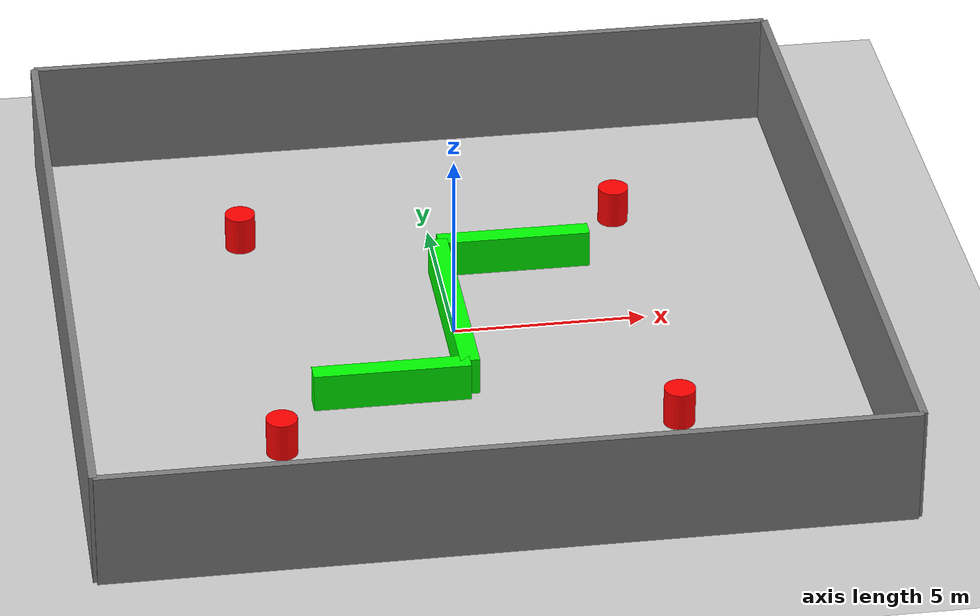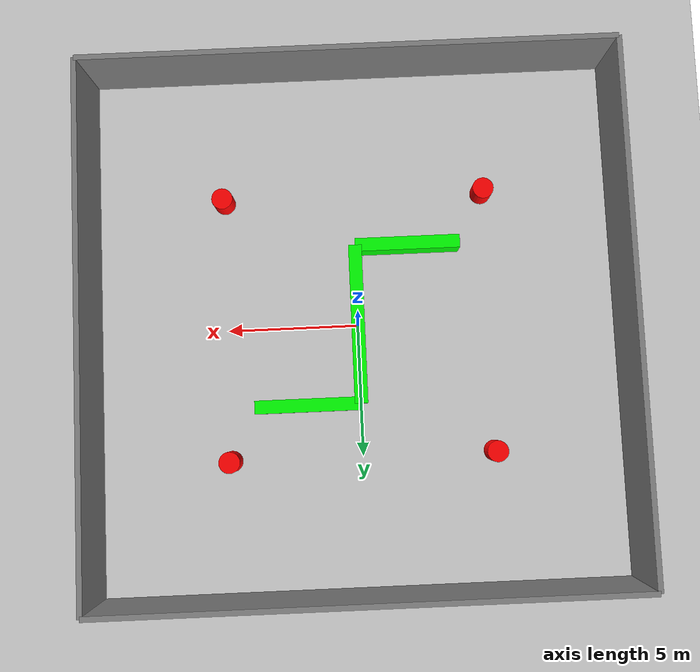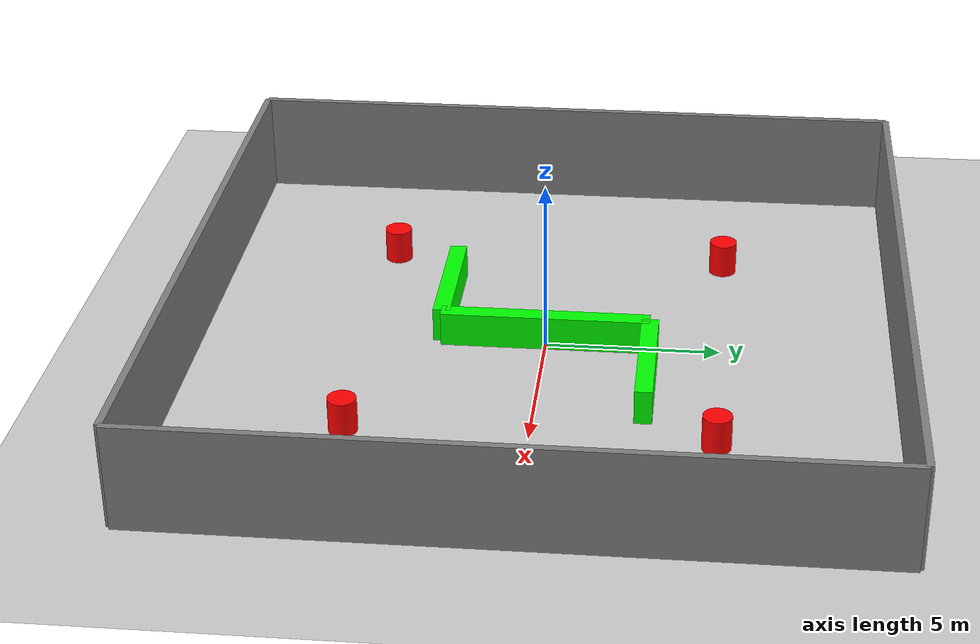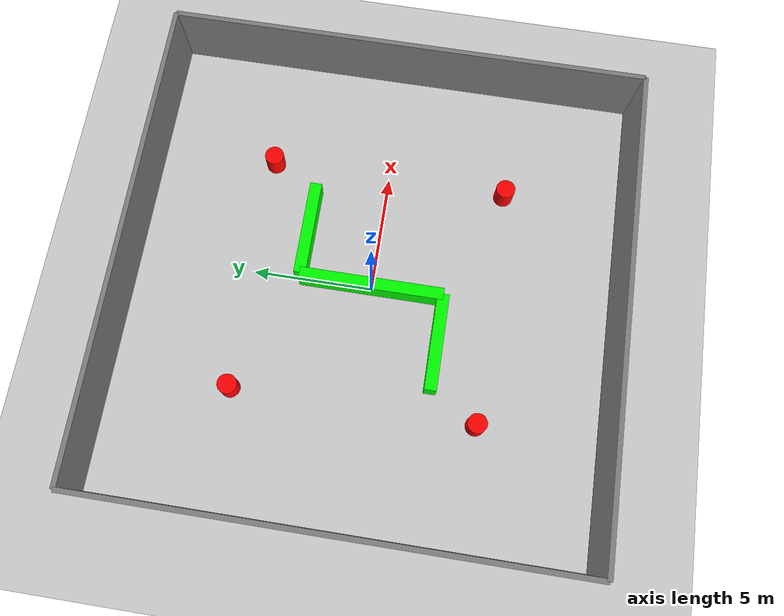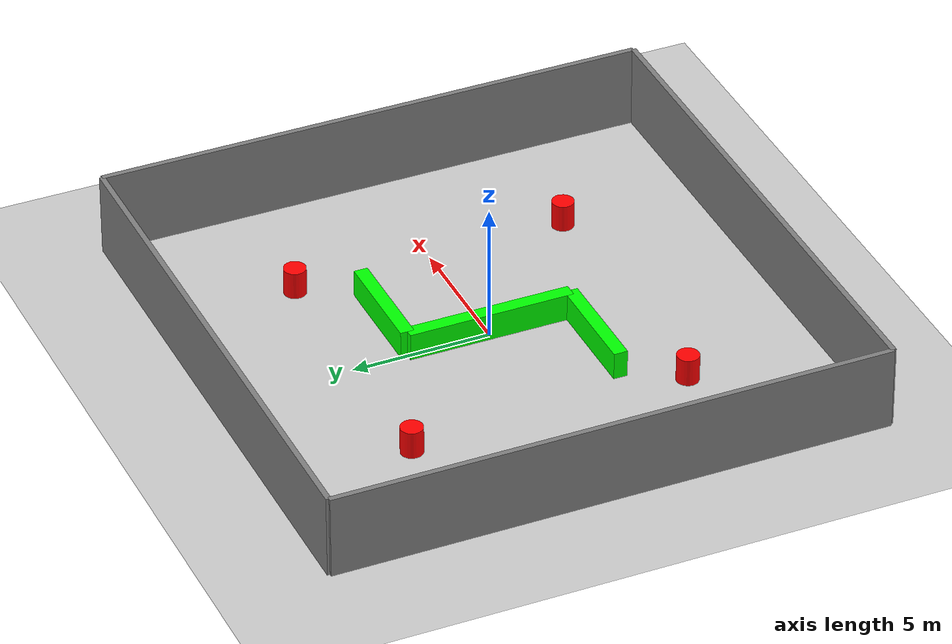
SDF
<sdf version="1.6">
 <world name="indoor_world">
  <include><uri>model://sun</uri></include>
  <include><uri>model://ground_plane</uri></include>
  <model name="room_walls">
   <static>true</static>
   <link name="walls">
    <collision name="c_w1">
     <pose>10 0 1.5 0 0 0</pose>
     <geometry><box><size>0.2 20 3</size></box></geometry>
    </collision>
    <visual name="v_w1">
     <pose>10 0 1.5 0 0 0</pose>
     <geometry><box><size>0.2 20 3</size></box></geometry>
     <material><ambient>0.5 0.5 0.5 1</ambient></material>
    </visual>
    <collision name="c_w2">
     <pose>-10 0 1.5 0 0 0</pose>
     <geometry><box><size>0.2 20 3</size></box></geometry>
    </collision>
    <visual name="v_w2">
     <pose>-10 0 1.5 0 0 0</pose>
     <geometry><box><size>0.2 20 3</size></box></geometry>
     <material><ambient>0.5 0.5 0.5 1</ambient></material>
    </visual>
    <collision name="c_w3">
     <pose>0 10 1.5 0 0 0</pose>
     <geometry><box><size>20 0.2 3</size></box></geometry>
    </collision>
    <visual name="v_w3">
     <pose>0 10 1.5 0 0 0</pose>
     <geometry><box><size>20 0.2 3</size></box></geometry>
     <material><ambient>0.5 0.5 0.5 1</ambient></material>
    </visual>
    <collision name="c_w4">
     <pose>0 -10 1.5 0 0 0</pose>
     <geometry><box><size>20 0.2 3</size></box></geometry>
    </collision>
    <visual name="v_w4">
     <pose>0 -10 1.5 0 0 0</pose>
     <geometry><box><size>20 0.2 3</size></box></geometry>
     <material><ambient>0.5 0.5 0.5 1</ambient></material>
    </visual>
   </link>
  </model>
  <model name="c1">
   <static>true</static>
   <link name="l">
    <pose>5 5 0.5 0 0 0</pose>
    <collision name="c">
     <geometry><cylinder><radius>0.4</radius><length>1</length></cylinder></geometry>
    </collision>
    <visual name="v">
     <geometry><cylinder><radius>0.4</radius><length>1</length></cylinder></geometry>
     <material><ambient>1 0 0 1</ambient></material>
    </visual>
   </link>
  </model>
  <model name="c2">
   <static>true</static>
   <link name="l">
    <pose>-5 -5 0.5 0 0 0</pose>
    <collision name="c">
     <geometry><cylinder><radius>0.4</radius><length>1</length></cylinder></geometry>
    </collision>
    <visual name="v">
     <geometry><cylinder><radius>0.4</radius><length>1</length></cylinder></geometry>
     <material><ambient>1 0 0 1</ambient></material>
    </visual>
   </link>
  </model>
  <model name="c3">
   <static>true</static>
   <link name="l">
    <pose>5 -5 0.5 0 0 0</pose>
    <collision name="c">
     <geometry><cylinder><radius>0.4</radius><length>1</length></cylinder></geometry>
    </collision>
    <visual name="v">
     <geometry><cylinder><radius>0.4</radius><length>1</length></cylinder></geometry>
     <material><ambient>1 0 0 1</ambient></material>
    </visual>
   </link>
  </model>
  <model name="c4">
   <static>true</static>
   <link name="l">
    <pose>-5 5 0.5 0 0 0</pose>
    <collision name="c">
     <geometry><cylinder><radius>0.4</radius><length>1</length></cylinder></geometry>
    </collision>
    <visual name="v">
     <geometry><cylinder><radius>0.4</radius><length>1</length></cylinder></geometry>
     <material><ambient>1 0 0 1</ambient></material>
    </visual>
   </link>
  </model>
  <model name="z1">
   <static>true</static>
   <link name="l">
    <pose>0 0 0.5 0 0 0</pose>
    <collision name="c"><geometry><box><size>0.5 6 1</size></box></geometry></collision>
    <visual name="v">
     <geometry><box><size>0.5 6 1</size></box></geometry>
     <material><ambient>0 1 0 1</ambient></material>
    </visual>
   </link>
  </model>
  <model name="z2">
   <static>true</static>
   <link name="l">
    <pose>2 3 0.5 0 0 0</pose>
    <collision name="c"><geometry><box><size>4 0.5 1</size></box></geometry></collision>
    <visual name="v">
     <geometry><box><size>4 0.5 1</size></box></geometry>
     <material><ambient>0 1 0 1</ambient></material>
    </visual>
   </link>
  </model>
  <model name="z3">
   <static>true</static>
   <link name="l">
    <pose>-2 -3 0.5 0 0 0</pose>
    <collision name="c"><geometry><box><size>4 0.5 1</size></box></geometry></collision>
    <visual name="v">
     <geometry><box><size>4 0.5 1</size></box></geometry>
     <material><ambient>0 1 0 1</ambient></material>
    </visual>
   </link>
  </model>
 </world>
</sdf>
